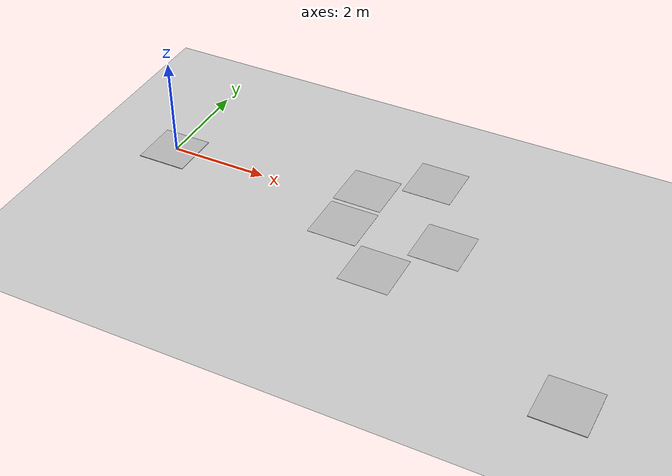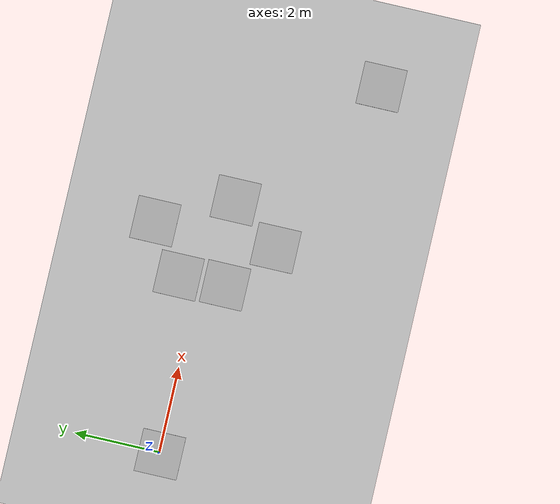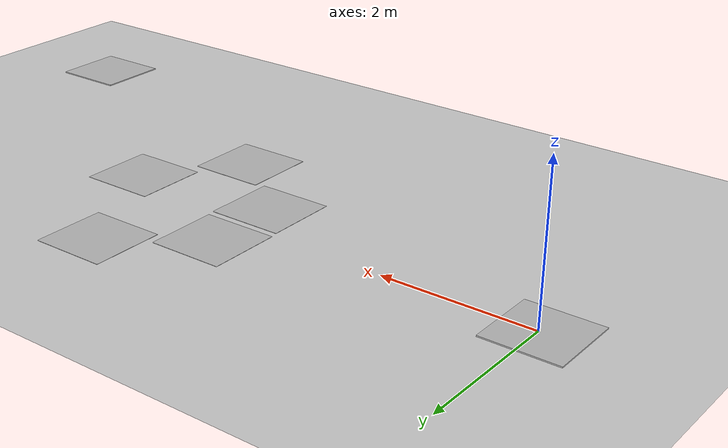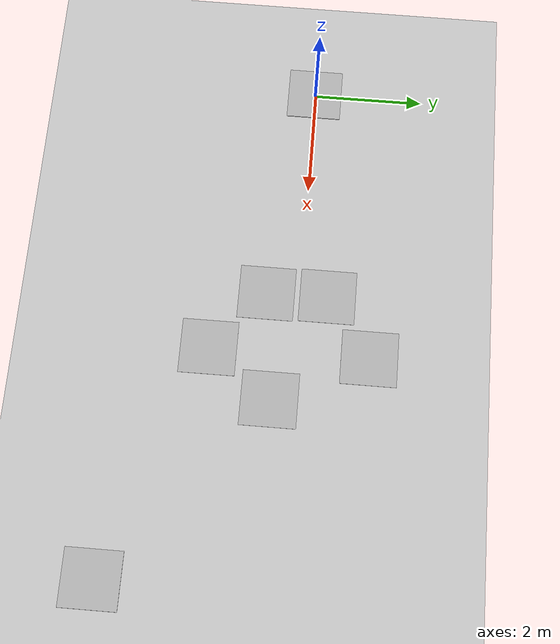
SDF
<sdf version="1.6">
 <world name="default">
  <light name="sun" type="directional">
   <pose>0 0 10 0 -0 0</pose>
   <diffuse>0.8 0.8 0.8 1</diffuse>
   <specular>0.2 0.2 0.2 1</specular>
   <attenuation>
    <range>1000</range>
    <constant>0.9</constant>
    <linear>0.01</linear>
    <quadratic>0.001</quadratic>
   </attenuation>
   <direction>-0.5 0.1 -0.9</direction>
  </light>
  <model name="ground_plane">
   <static>1</static>
   <link name="link">
    <collision name="collision">
     <geometry><plane><normal>0 0 1</normal><size>100 100</size></plane></geometry>
     <surface><friction><ode><mu>100</mu><mu2>50</mu2></ode></friction></surface>
    </collision>
    <visual name="visual">
     <cast_shadows>0</cast_shadows>
     <geometry><plane><normal>0 0 1</normal><size>100 100</size></plane></geometry>
     <material>
      <script><uri>file://media/materials/scripts/gazebo.material</uri><name>Gazebo/Grey</name></script>
     </material>
    </visual>
   </link>
  </model>
  <gravity>0 0 -9.8</gravity>
  <magnetic_field>6e-06 2.3e-05 -4.2e-05</magnetic_field>
  <atmosphere type="adiabatic"/>
  <physics name="default_physics" default="0" type="ode">
   <max_step_size>0.001</max_step_size>
   <real_time_factor>1</real_time_factor>
   <real_time_update_rate>1000</real_time_update_rate>
  </physics>
  <scene><ambient>0.4 0.4 0.4 1</ambient><background>0.7 0.7 0.7 1</background><shadows>1</shadows></scene>
  <spherical_coordinates>
   <surface_model>EARTH_WGS84</surface_model>
   <latitude_deg>0</latitude_deg>
   <longitude_deg>0</longitude_deg>
   <elevation>0</elevation>
   <heading_deg>0</heading_deg>
  </spherical_coordinates>
  <model name="h_1">
   <link name="link">
    <pose>0 0 0.115 0 -0 0</pose>
    <inertial>
     <mass>1000</mass>
     <inertia><ixx>1000</ixx><ixy>0</ixy><ixz>0</ixz><iyy>1000</iyy><iyz>0</iyz><izz>1000</izz></inertia>
    </inertial>
    <collision name="collision">
     <geometry><box><size>0.496 0.496 0.01</size></box></geometry>
     <surface>
      <contact>
       <poissons_ratio>0.347</poissons_ratio>
       <elastic_modulus>8.8e+09</elastic_modulus>
       <ode><kp>100000</kp><kd>100</kd><max_vel>100</max_vel><min_depth>0.001</min_depth></ode>
      </contact>
      <friction>
       <torsional>
        <coefficient>1</coefficient>
        <use_patch_radius>0</use_patch_radius>
        <surface_radius>0.01</surface_radius>
       </torsional>
      </friction>
     </surface>
    </collision>
    <visual name="visual">
     <geometry><box><size>1 1 0.05</size></box></geometry>
     <material>
      <script>
       <uri>model://H/materials/scripts</uri>
       <uri>model://H/materials/textures</uri>
       <name>Mark/Diffuse2</name>
      </script>
     </material>
    </visual>
   </link>
   <pose>-0.038659 -0.019867 -0.135253 0 -0 0</pose>
  </model>
  <model name="h_1_clone">
   <link name="link">
    <pose>0 0 0.115 0 -0 0</pose>
    <inertial>
     <mass>1000</mass>
     <inertia><ixx>1000</ixx><ixy>0</ixy><ixz>0</ixz><iyy>1000</iyy><iyz>0</iyz><izz>1000</izz></inertia>
    </inertial>
    <collision name="collision">
     <geometry><box><size>0.496 0.496 0.01</size></box></geometry>
     <surface>
      <contact>
       <poissons_ratio>0.347</poissons_ratio>
       <elastic_modulus>8.8e+09</elastic_modulus>
       <ode><kp>100000</kp><kd>100</kd><max_vel>100</max_vel><min_depth>0.001</min_depth></ode>
      </contact>
      <friction>
       <torsional>
        <coefficient>1</coefficient>
        <use_patch_radius>0</use_patch_radius>
        <surface_radius>0.01</surface_radius>
       </torsional>
      </friction>
     </surface>
    </collision>
    <visual name="visual">
     <geometry><box><size>1 1 0.05</size></box></geometry>
     <material>
      <script>
       <uri>model://H/materials/scripts</uri>
       <uri>model://H/materials/textures</uri>
       <name>Mark/Diffuse2</name>
      </script>
     </material>
    </visual>
   </link>
   <pose>9.372 -3.08925 -0.135254 0 -0 0</pose>
  </model>
  <model name="zhuangjiache_0">
   <link name="link">
    <pose>0 0 0.115 0 -0 0</pose>
    <inertial>
     <mass>3.39</mass>
     <inertia><ixx>0.58</ixx><ixy>0</ixy><ixz>0</ixz><iyy>0.58</iyy><iyz>0</iyz><izz>0.19</izz></inertia>
    </inertial>
    <collision name="collision"><geometry><box><size>0.496 0.496 0.01</size></box></geometry></collision>
    <visual name="visual">
     <geometry><box><size>1 1 0.005</size></box></geometry>
     <material>
      <script>
       <uri>model://zhuangjiache/materials/scripts</uri>
       <uri>model://zhuangjiache/materials/textures</uri>
       <name>Mark/Diffuse6</name>
      </script>
     </material>
    </visual>
   </link>
   <pose>5.18828 -1.54393 -0.11 0 -0 0.00193</pose>
  </model>
  <model name="zhangpeng_0">
   <link name="link">
    <pose>0 0 0.115 0 -0 0</pose>
    <inertial>
     <mass>3.39</mass>
     <inertia><ixx>0.58</ixx><ixy>0</ixy><ixz>0</ixz><iyy>0.58</iyy><iyz>0</iyz><izz>0.19</izz></inertia>
    </inertial>
    <collision name="collision"><geometry><box><size>0.496 0.496 0.005</size></box></geometry></collision>
    <visual name="visual">
     <geometry><box><size>1 1 0.005</size></box></geometry>
     <material>
      <script>
       <uri>model://zhangpeng/materials/scripts</uri>
       <uri>model://zhangpeng/materials/textures</uri>
       <name>Mark/Diffuse5</name>
      </script>
     </material>
    </visual>
   </link>
   <pose>4.08588 -0.603056 -0.1125 0 -0 0</pose>
  </model>
  <model name="tanke_0">
   <link name="link">
    <pose>0 0 0.115 0 -0 0</pose>
    <inertial>
     <mass>3.39</mass>
     <inertia><ixx>0.58</ixx><ixy>0</ixy><ixz>0</ixz><iyy>0.58</iyy><iyz>0</iyz><izz>0.19</izz></inertia>
    </inertial>
    <collision name="collision"><geometry><box><size>0.496 0.496 0.005</size></box></geometry></collision>
    <visual name="visual">
     <geometry><box><size>1 1 0.005</size></box></geometry>
     <material>
      <script>
       <uri>model://tanke/materials/scripts</uri>
       <uri>model://tanke/materials/textures</uri>
       <name>Mark/Diffuse4</name>
      </script>
     </material>
    </visual>
   </link>
   <pose>4.06758 0.492132 -0.1125 0 -0 0</pose>
  </model>
  <model name="qiaoliang_0">
   <link name="link">
    <pose>0 0 0.115 0 -0 0</pose>
    <inertial>
     <mass>3.39</mass>
     <inertia><ixx>0.58</ixx><ixy>0</ixy><ixz>0</ixz><iyy>0.58</iyy><iyz>0</iyz><izz>0.19</izz></inertia>
    </inertial>
    <collision name="collision"><geometry><box><size>0.496 0.496 0.005</size></box></geometry></collision>
    <visual name="visual">
     <geometry><box><size>1 1 0.005</size></box></geometry>
     <material>
      <script>
       <uri>model://qiaoliang/materials/scripts</uri>
       <uri>model://qiaoliang/materials/textures</uri>
       <name>Mark/Diffuse3</name>
      </script>
     </material>
    </visual>
   </link>
   <pose>6.0531 -0.398863 -0.1125 0 -0 0</pose>
  </model>
  <model name="dibao_0">
   <link name="link">
    <pose>0 0 0.115 0 -0 0</pose>
    <inertial>
     <mass>3.39</mass>
     <inertia><ixx>0.58</ixx><ixy>0</ixy><ixz>0</ixz><iyy>0.58</iyy><iyz>0</iyz><izz>0.19</izz></inertia>
    </inertial>
    <collision name="collision"><geometry><box><size>0.496 0.496 0.005</size></box></geometry></collision>
    <visual name="visual">
     <geometry><box><size>1 1 0.005</size></box></geometry>
     <material>
      <script>
       <uri>model://dibao/materials/scripts</uri>
       <uri>model://dibao/materials/textures</uri>
       <name>Mark/Diffuse1</name>
      </script>
     </material>
    </visual>
   </link>
   <pose>5.16677 1.29934 -0.1125 0 -0 -3.5e-05</pose>
  </model>
 </world>
</sdf>
